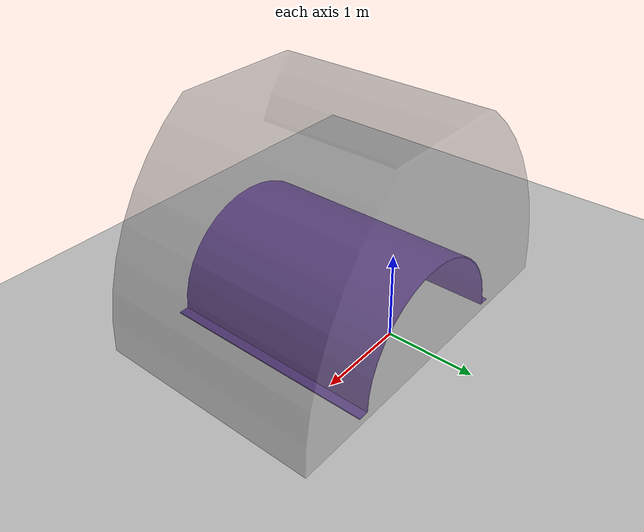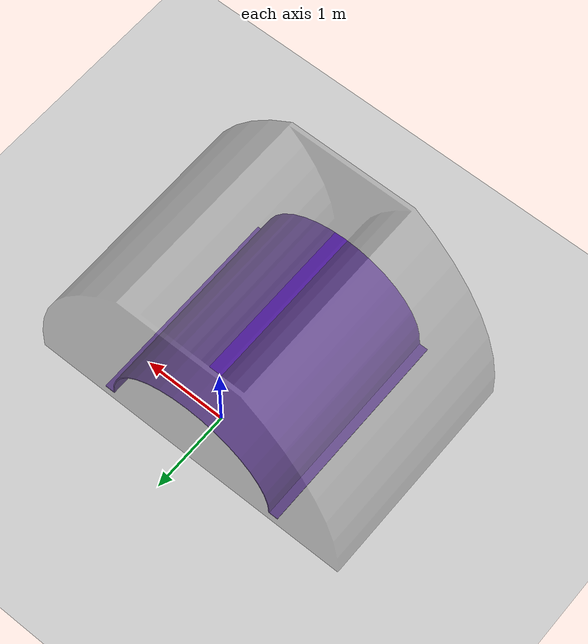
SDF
<sdf version="1.6">
 <world name="default">
  <light name="sun" type="directional">
   <pose>0 0 10 0 -0 0</pose>
   <diffuse>0.8 0.8 0.8 1</diffuse>
   <specular>0.2 0.2 0.2 1</specular>
   <attenuation>
    <range>1000</range>
    <constant>0.9</constant>
    <linear>0.01</linear>
    <quadratic>0.001</quadratic>
   </attenuation>
   <direction>-0.5 0.1 -0.9</direction>
  </light>
  <model name="ground_plane">
   <static>1</static>
   <link name="link">
    <collision name="collision">
     <geometry><plane><normal>0 0 1</normal><size>100 100</size></plane></geometry>
     <surface>
      <contact><collide_bitmask>65535</collide_bitmask></contact>
      <friction><ode><mu>100</mu><mu2>50</mu2></ode></friction>
     </surface>
    </collision>
    <visual name="visual">
     <cast_shadows>0</cast_shadows>
     <geometry><plane><normal>0 0 1</normal><size>100 100</size></plane></geometry>
     <material>
      <script><uri>file://media/materials/scripts/gazebo.material</uri><name>Gazebo/Grey</name></script>
     </material>
    </visual>
   </link>
  </model>
  <gravity>0 0 -9.8</gravity>
  <magnetic_field>6e-06 2.3e-05 -4.2e-05</magnetic_field>
  <atmosphere type="adiabatic"/>
  <physics name="default_physics" default="0" type="ode">
   <max_step_size>0.001</max_step_size>
   <real_time_factor>1</real_time_factor>
   <real_time_update_rate>1000</real_time_update_rate>
  </physics>
  <scene><ambient>0.4 0.4 0.4 1</ambient><background>0.7 0.7 0.7 1</background><shadows>1</shadows></scene>
  <spherical_coordinates>
   <surface_model>EARTH_WGS84</surface_model>
   <latitude_deg>0</latitude_deg>
   <longitude_deg>0</longitude_deg>
   <elevation>0</elevation>
   <heading_deg>0</heading_deg>
  </spherical_coordinates>
  <model name="tubestraight0304">
   <link name="base_link">
    <inertial>
     <pose>0 -2 0 0 1.570797 0</pose>
     <mass>106.93</mass>
     <inertia>
      <ixx>78.399</ixx>
      <ixy>3.0113e-13</ixy>
      <ixz>-7.3168e-14</ixz>
      <iyy>69.372</iyy>
      <iyz>-0.066809</iyz>
      <izz>120.41</izz>
     </inertia>
    </inertial>
    <collision name="base_link_collision">
     <geometry>
      <mesh><scale>1 1 1</scale><uri>/home/hyh/catkin_ws/src/tubestraight0304/meshes/base_link.STL</uri></mesh>
     </geometry>
     <surface>
      <friction>
       <ode><mu>100</mu><mu2>100</mu2><fdir1>0 1 0</fdir1><slip1>0</slip1><slip2>0</slip2></ode>
       <torsional>
        <coefficient>1</coefficient>
        <patch_radius>0</patch_radius>
        <surface_radius>0</surface_radius>
        <use_patch_radius>1</use_patch_radius>
        <ode><slip>0</slip></ode>
       </torsional>
      </friction>
     </surface>
    </collision>
    <visual name="base_link_visual">
     <geometry>
      <mesh><scale>1 1 1</scale><uri>/home/hyh/catkin_ws/src/tubestraight0304/meshes/base_link.STL</uri></mesh>
     </geometry>
     <material>
      <script><name>Gazebo/Indigo</name><uri>file://media/materials/scripts/gazebo.material</uri></script>
     </material>
    </visual>
   </link>
   <joint name="fixed" type="fixed"><child>base_link</child><parent>world</parent></joint>
   <link name="Link_wing">
    <pose>0 0 1.0635 0 -0 0</pose>
    <inertial>
     <mass>14174</mass>
     <inertia>
      <ixx>9617.8</ixx>
      <ixy>1062.1</ixy>
      <ixz>-4.0963e-12</ixz>
      <iyy>13416</iyy>
      <iyz>-4.5475e-13</iyz>
      <izz>12598</izz>
     </inertia>
    </inertial>
    <collision name="Link_wing_collision">
     <geometry>
      <mesh><scale>1 1 1</scale><uri>/home/hyh/catkin_ws/src/tubestraight0304/meshes/Link_wing.STL</uri></mesh>
     </geometry>
     <surface>
      <friction>
       <ode><mu>0</mu><mu2>0</mu2><fdir1>0 0 0</fdir1><slip1>0</slip1><slip2>0</slip2></ode>
       <torsional>
        <coefficient>0</coefficient>
        <patch_radius>0</patch_radius>
        <surface_radius>0</surface_radius>
        <use_patch_radius>0</use_patch_radius>
        <ode><slip>0</slip></ode>
       </torsional>
      </friction>
     </surface>
    </collision>
    <visual name="Link_wing_visual">
     <geometry>
      <mesh><scale>1 1 1</scale><uri>/home/hyh/catkin_ws/src/tubestraight0304/meshes/Link_wing.STL</uri></mesh>
     </geometry>
     <material>
      <script><name>Gazebo/GreyTransparent</name><uri>file://media/materials/scripts/gazebo.material</uri></script>
     </material>
    </visual>
   </link>
   <joint name="Joint_wing" type="revolute">
    <child>Link_wing</child>
    <parent>base_link</parent>
    <axis>
     <xyz>1 0 0</xyz>
     <limit><lower>-1e+16</lower><upper>1e+16</upper></limit>
     <dynamics><spring_reference>0</spring_reference><spring_stiffness>0</spring_stiffness></dynamics>
     <use_parent_model_frame>0</use_parent_model_frame>
    </axis>
   </joint>
   <pose>0 -2 0.01200 0 0 1.570797</pose>
  </model>
 </world>
</sdf>
